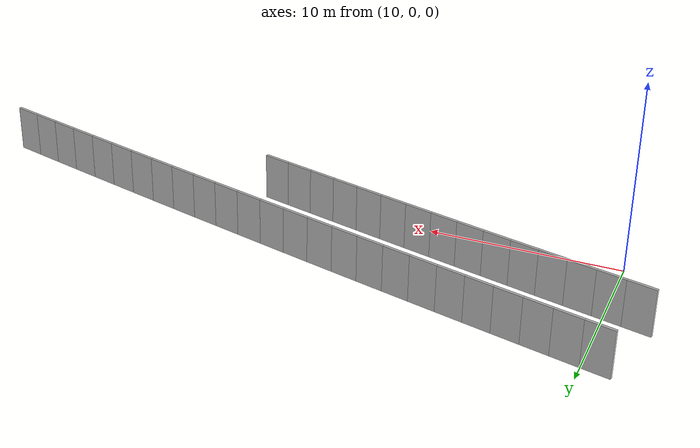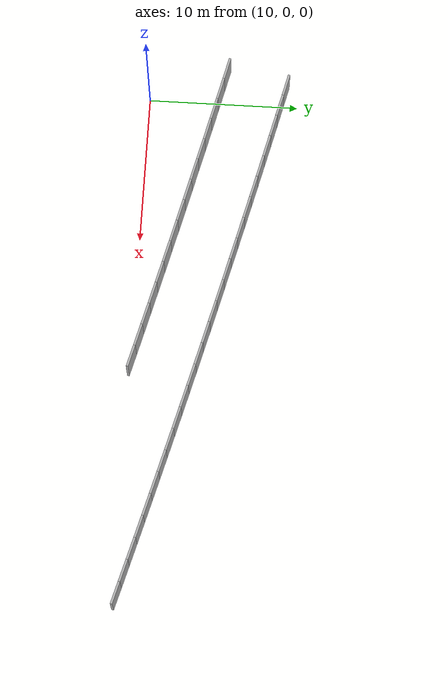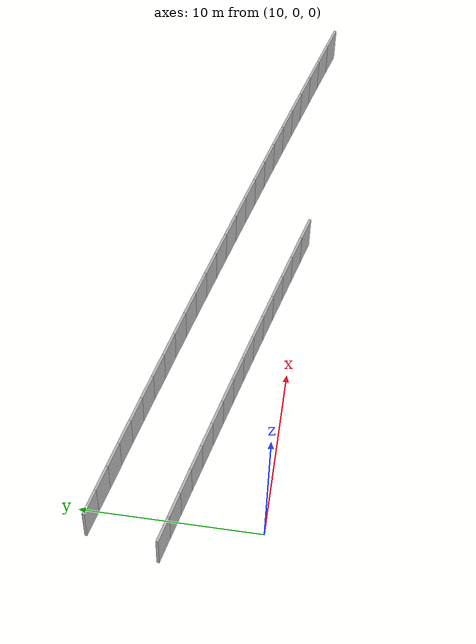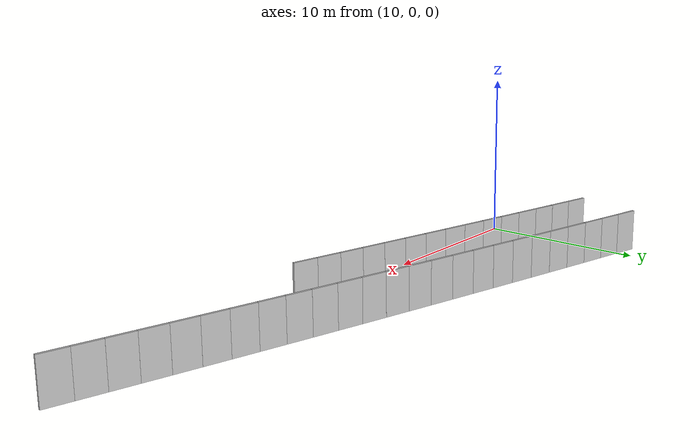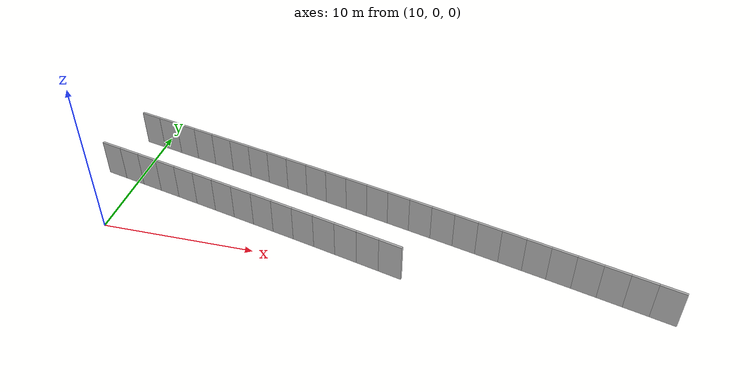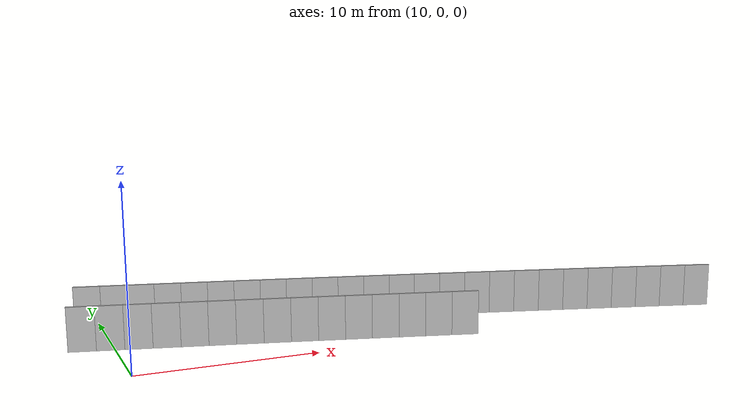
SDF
<?xml version="1.0" ?>
<sdf version="1.6">
  <model name="sps_3146">
    <pose frame="">0 0 0 0 -0 0</pose>
    <static>1</static>
    <self_collide>0</self_collide>
    <allow_auto_disable>0</allow_auto_disable>
    <link name="Wall10752">
      <kinematic>0</kinematic>
      <gravity>1</gravity>
      <self_collide>0</self_collide>
      <collision name="collision">
        <geometry>
          <box>
            <size>1.49661 0.15 2.5</size>
          </box>
        </geometry>
        <pose frame="">0 0 0 0 -0 0</pose>
      </collision>
      <visual name="visual">
        <geometry>
          <box>
            <size>1.49661 0.15 2.5</size>
          </box>
        </geometry>
        <pose frame="">0 0 0 0 -0 0</pose>
        <cast_shadows>1</cast_shadows>
        <transparency>0.0</transparency>
      </visual>
      <pose frame="">28.6499 0.0580892 1.25 0 -0 2.88601</pose>
    </link>
    <link name="Wall10753">
      <kinematic>0</kinematic>
      <gravity>1</gravity>
      <self_collide>0</self_collide>
      <collision name="collision">
        <geometry>
          <box>
            <size>1.49649 0.15 2.5</size>
          </box>
        </geometry>
        <pose frame="">0 0 0 0 -0 0</pose>
      </collision>
      <visual name="visual">
        <geometry>
          <box>
            <size>1.49649 0.15 2.5</size>
          </box>
        </geometry>
        <pose frame="">0 0 0 0 -0 0</pose>
        <cast_shadows>1</cast_shadows>
        <transparency>0.0</transparency>
      </visual>
      <pose frame="">27.2017 0.435378 1.25 0 -0 2.88746</pose>
    </link>
    <link name="Wall10754">
      <kinematic>0</kinematic>
      <gravity>1</gravity>
      <self_collide>0</self_collide>
      <collision name="collision">
        <geometry>
          <box>
            <size>1.49641 0.15 2.5</size>
          </box>
        </geometry>
        <pose frame="">0 0 0 0 -0 0</pose>
      </collision>
      <visual name="visual">
        <geometry>
          <box>
            <size>1.49641 0.15 2.5</size>
          </box>
        </geometry>
        <pose frame="">0 0 0 0 -0 0</pose>
        <cast_shadows>1</cast_shadows>
        <transparency>0.0</transparency>
      </visual>
      <pose frame="">25.753 0.810378 1.25 0 -0 2.88914</pose>
    </link>
    <link name="Wall10755">
      <kinematic>0</kinematic>
      <gravity>1</gravity>
      <self_collide>0</self_collide>
      <collision name="collision">
        <geometry>
          <box>
            <size>1.49647 0.15 2.5</size>
          </box>
        </geometry>
        <pose frame="">0 0 0 0 -0 0</pose>
      </collision>
      <visual name="visual">
        <geometry>
          <box>
            <size>1.49647 0.15 2.5</size>
          </box>
        </geometry>
        <pose frame="">0 0 0 0 -0 0</pose>
        <cast_shadows>1</cast_shadows>
        <transparency>0.0</transparency>
      </visual>
      <pose frame="">24.3037 1.18309 1.25 0 -0 2.89062</pose>
    </link>
    <link name="Wall10756">
      <kinematic>0</kinematic>
      <gravity>1</gravity>
      <self_collide>0</self_collide>
      <collision name="collision">
        <geometry>
          <box>
            <size>1.49669 0.15 2.5</size>
          </box>
        </geometry>
        <pose frame="">0 0 0 0 -0 0</pose>
      </collision>
      <visual name="visual">
        <geometry>
          <box>
            <size>1.49669 0.15 2.5</size>
          </box>
        </geometry>
        <pose frame="">0 0 0 0 -0 0</pose>
        <cast_shadows>1</cast_shadows>
        <transparency>0.0</transparency>
      </visual>
      <pose frame="">22.8537 1.55351 1.25 0 -0 2.89234</pose>
    </link>
    <link name="Wall10757">
      <kinematic>0</kinematic>
      <gravity>1</gravity>
      <self_collide>0</self_collide>
      <collision name="collision">
        <geometry>
          <box>
            <size>1.49651 0.15 2.5</size>
          </box>
        </geometry>
        <pose frame="">0 0 0 0 -0 0</pose>
      </collision>
      <visual name="visual">
        <geometry>
          <box>
            <size>1.49651 0.15 2.5</size>
          </box>
        </geometry>
        <pose frame="">0 0 0 0 -0 0</pose>
        <cast_shadows>1</cast_shadows>
        <transparency>0.0</transparency>
      </visual>
      <pose frame="">21.403 1.92161 1.25 0 -0 2.89382</pose>
    </link>
    <link name="Wall10758">
      <kinematic>0</kinematic>
      <gravity>1</gravity>
      <self_collide>0</self_collide>
      <collision name="collision">
        <geometry>
          <box>
            <size>1.49626 0.15 2.5</size>
          </box>
        </geometry>
        <pose frame="">0 0 0 0 -0 0</pose>
      </collision>
      <visual name="visual">
        <geometry>
          <box>
            <size>1.49626 0.15 2.5</size>
          </box>
        </geometry>
        <pose frame="">0 0 0 0 -0 0</pose>
        <cast_shadows>1</cast_shadows>
        <transparency>0.0</transparency>
      </visual>
      <pose frame="">19.952 2.2874 1.25 0 -0 2.89547</pose>
    </link>
    <link name="Wall10759">
      <kinematic>0</kinematic>
      <gravity>1</gravity>
      <self_collide>0</self_collide>
      <collision name="collision">
        <geometry>
          <box>
            <size>1.49657 0.15 2.5</size>
          </box>
        </geometry>
        <pose frame="">0 0 0 0 -0 0</pose>
      </collision>
      <visual name="visual">
        <geometry>
          <box>
            <size>1.49657 0.15 2.5</size>
          </box>
        </geometry>
        <pose frame="">0 0 0 0 -0 0</pose>
        <cast_shadows>1</cast_shadows>
        <transparency>0.0</transparency>
      </visual>
      <pose frame="">18.5004 2.65089 1.25 0 -0 2.89699</pose>
    </link>
    <link name="Wall10760">
      <kinematic>0</kinematic>
      <gravity>1</gravity>
      <self_collide>0</self_collide>
      <collision name="collision">
        <geometry>
          <box>
            <size>1.49652 0.15 2.5</size>
          </box>
        </geometry>
        <pose frame="">0 0 0 0 -0 0</pose>
      </collision>
      <visual name="visual">
        <geometry>
          <box>
            <size>1.49652 0.15 2.5</size>
          </box>
        </geometry>
        <pose frame="">0 0 0 0 -0 0</pose>
        <cast_shadows>1</cast_shadows>
        <transparency>0.0</transparency>
      </visual>
      <pose frame="">17.0481 3.0121 1.25 0 -0 2.89866</pose>
    </link>
    <link name="Wall10761">
      <kinematic>0</kinematic>
      <gravity>1</gravity>
      <self_collide>0</self_collide>
      <collision name="collision">
        <geometry>
          <box>
            <size>1.49641 0.15 2.5</size>
          </box>
        </geometry>
        <pose frame="">0 0 0 0 -0 0</pose>
      </collision>
      <visual name="visual">
        <geometry>
          <box>
            <size>1.49641 0.15 2.5</size>
          </box>
        </geometry>
        <pose frame="">0 0 0 0 -0 0</pose>
        <cast_shadows>1</cast_shadows>
        <transparency>0.0</transparency>
      </visual>
      <pose frame="">15.5954 3.37099 1.25 0 -0 2.90016</pose>
    </link>
    <link name="Wall10762">
      <kinematic>0</kinematic>
      <gravity>1</gravity>
      <self_collide>0</self_collide>
      <collision name="collision">
        <geometry>
          <box>
            <size>1.49665 0.15 2.5</size>
          </box>
        </geometry>
        <pose frame="">0 0 0 0 -0 0</pose>
      </collision>
      <visual name="visual">
        <geometry>
          <box>
            <size>1.49665 0.15 2.5</size>
          </box>
        </geometry>
        <pose frame="">0 0 0 0 -0 0</pose>
        <cast_shadows>1</cast_shadows>
        <transparency>0.0</transparency>
      </visual>
      <pose frame="">14.142 3.72768 1.25 0 -0 2.90171</pose>
    </link>
    <link name="Wall10763">
      <kinematic>0</kinematic>
      <gravity>1</gravity>
      <self_collide>0</self_collide>
      <collision name="collision">
        <geometry>
          <box>
            <size>1.4965 0.15 2.5</size>
          </box>
        </geometry>
        <pose frame="">0 0 0 0 -0 0</pose>
      </collision>
      <visual name="visual">
        <geometry>
          <box>
            <size>1.4965 0.15 2.5</size>
          </box>
        </geometry>
        <pose frame="">0 0 0 0 -0 0</pose>
        <cast_shadows>1</cast_shadows>
        <transparency>0.0</transparency>
      </visual>
      <pose frame="">12.6879 4.08208 1.25 0 -0 2.90332</pose>
    </link>
    <link name="Wall10764">
      <kinematic>0</kinematic>
      <gravity>1</gravity>
      <self_collide>0</self_collide>
      <collision name="collision">
        <geometry>
          <box>
            <size>1.49648 0.15 2.5</size>
          </box>
        </geometry>
        <pose frame="">0 0 0 0 -0 0</pose>
      </collision>
      <visual name="visual">
        <geometry>
          <box>
            <size>1.49648 0.15 2.5</size>
          </box>
        </geometry>
        <pose frame="">0 0 0 0 -0 0</pose>
        <cast_shadows>1</cast_shadows>
        <transparency>0.0</transparency>
      </visual>
      <pose frame="">11.2335 4.4341 1.25 0 -0 2.90495</pose>
    </link>
    <link name="Wall10765">
      <kinematic>0</kinematic>
      <gravity>1</gravity>
      <self_collide>0</self_collide>
      <collision name="collision">
        <geometry>
          <box>
            <size>1.49654 0.15 2.5</size>
          </box>
        </geometry>
        <pose frame="">0 0 0 0 -0 0</pose>
      </collision>
      <visual name="visual">
        <geometry>
          <box>
            <size>1.49654 0.15 2.5</size>
          </box>
        </geometry>
        <pose frame="">0 0 0 0 -0 0</pose>
        <cast_shadows>1</cast_shadows>
        <transparency>0.0</transparency>
      </visual>
      <pose frame="">9.77837 4.7838 1.25 0 -0 2.90652</pose>
    </link>
    <link name="Wall10766">
      <kinematic>0</kinematic>
      <gravity>1</gravity>
      <self_collide>0</self_collide>
      <collision name="collision">
        <geometry>
          <box>
            <size>1.49641 0.15 2.5</size>
          </box>
        </geometry>
        <pose frame="">0 0 0 0 -0 0</pose>
      </collision>
      <visual name="visual">
        <geometry>
          <box>
            <size>1.49641 0.15 2.5</size>
          </box>
        </geometry>
        <pose frame="">0 0 0 0 -0 0</pose>
        <cast_shadows>1</cast_shadows>
        <transparency>0.0</transparency>
      </visual>
      <pose frame="">8.32278 5.13118 1.25 0 -0 2.90813</pose>
    </link>
    <link name="Wall11339">
      <kinematic>0</kinematic>
      <gravity>1</gravity>
      <self_collide>0</self_collide>
      <collision name="collision">
        <geometry>
          <box>
            <size>1.50309 0.15 2.5</size>
          </box>
        </geometry>
        <pose frame="">0 0 0 0 -0 0</pose>
      </collision>
      <visual name="visual">
        <geometry>
          <box>
            <size>1.50309 0.15 2.5</size>
          </box>
        </geometry>
        <pose frame="">0 0 0 0 -0 0</pose>
        <cast_shadows>1</cast_shadows>
        <transparency>0.0</transparency>
      </visual>
      <pose frame="">44.208 0.147475 1.25 0 -0 2.87002</pose>
    </link>
    <link name="Wall11340">
      <kinematic>0</kinematic>
      <gravity>1</gravity>
      <self_collide>0</self_collide>
      <collision name="collision">
        <geometry>
          <box>
            <size>1.50298 0.15 2.5</size>
          </box>
        </geometry>
        <pose frame="">0 0 0 0 -0 0</pose>
      </collision>
      <visual name="visual">
        <geometry>
          <box>
            <size>1.50298 0.15 2.5</size>
          </box>
        </geometry>
        <pose frame="">0 0 0 0 -0 0</pose>
        <cast_shadows>1</cast_shadows>
        <transparency>0.0</transparency>
      </visual>
      <pose frame="">42.7598 0.549483 1.25 0 -0 2.87164</pose>
    </link>
    <link name="Wall11341">
      <kinematic>0</kinematic>
      <gravity>1</gravity>
      <self_collide>0</self_collide>
      <collision name="collision">
        <geometry>
          <box>
            <size>1.50315 0.15 2.5</size>
          </box>
        </geometry>
        <pose frame="">0 0 0 0 -0 0</pose>
      </collision>
      <visual name="visual">
        <geometry>
          <box>
            <size>1.50315 0.15 2.5</size>
          </box>
        </geometry>
        <pose frame="">0 0 0 0 -0 0</pose>
        <cast_shadows>1</cast_shadows>
        <transparency>0.0</transparency>
      </visual>
      <pose frame="">41.3108 0.94908 1.25 0 -0 2.87336</pose>
    </link>
    <link name="Wall11342">
      <kinematic>0</kinematic>
      <gravity>1</gravity>
      <self_collide>0</self_collide>
      <collision name="collision">
        <geometry>
          <box>
            <size>1.50311 0.15 2.5</size>
          </box>
        </geometry>
        <pose frame="">0 0 0 0 -0 0</pose>
      </collision>
      <visual name="visual">
        <geometry>
          <box>
            <size>1.50311 0.15 2.5</size>
          </box>
        </geometry>
        <pose frame="">0 0 0 0 -0 0</pose>
        <cast_shadows>1</cast_shadows>
        <transparency>0.0</transparency>
      </visual>
      <pose frame="">39.8611 1.34627 1.25 0 -0 2.875</pose>
    </link>
    <link name="Wall11343">
      <kinematic>0</kinematic>
      <gravity>1</gravity>
      <self_collide>0</self_collide>
      <collision name="collision">
        <geometry>
          <box>
            <size>1.50301 0.15 2.5</size>
          </box>
        </geometry>
        <pose frame="">0 0 0 0 -0 0</pose>
      </collision>
      <visual name="visual">
        <geometry>
          <box>
            <size>1.50301 0.15 2.5</size>
          </box>
        </geometry>
        <pose frame="">0 0 0 0 -0 0</pose>
        <cast_shadows>1</cast_shadows>
        <transparency>0.0</transparency>
      </visual>
      <pose frame="">38.4108 1.74129 1.25 0 -0 2.87632</pose>
    </link>
    <link name="Wall11344">
      <kinematic>0</kinematic>
      <gravity>1</gravity>
      <self_collide>0</self_collide>
      <collision name="collision">
        <geometry>
          <box>
            <size>1.50313 0.15 2.5</size>
          </box>
        </geometry>
        <pose frame="">0 0 0 0 -0 0</pose>
      </collision>
      <visual name="visual">
        <geometry>
          <box>
            <size>1.50313 0.15 2.5</size>
          </box>
        </geometry>
        <pose frame="">0 0 0 0 -0 0</pose>
        <cast_shadows>1</cast_shadows>
        <transparency>0.0</transparency>
      </visual>
      <pose frame="">36.96 2.1342 1.25 0 -0 2.8779</pose>
    </link>
    <link name="Wall11345">
      <kinematic>0</kinematic>
      <gravity>1</gravity>
      <self_collide>0</self_collide>
      <collision name="collision">
        <geometry>
          <box>
            <size>1.50334 0.15 2.5</size>
          </box>
        </geometry>
        <pose frame="">0 0 0 0 -0 0</pose>
      </collision>
      <visual name="visual">
        <geometry>
          <box>
            <size>1.50334 0.15 2.5</size>
          </box>
        </geometry>
        <pose frame="">0 0 0 0 -0 0</pose>
        <cast_shadows>1</cast_shadows>
        <transparency>0.0</transparency>
      </visual>
      <pose frame="">35.5084 2.52479 1.25 0 -0 2.87958</pose>
    </link>
    <link name="Wall11346">
      <kinematic>0</kinematic>
      <gravity>1</gravity>
      <self_collide>0</self_collide>
      <collision name="collision">
        <geometry>
          <box>
            <size>1.50307 0.15 2.5</size>
          </box>
        </geometry>
        <pose frame="">0 0 0 0 -0 0</pose>
      </collision>
      <visual name="visual">
        <geometry>
          <box>
            <size>1.50307 0.15 2.5</size>
          </box>
        </geometry>
        <pose frame="">0 0 0 0 -0 0</pose>
        <cast_shadows>1</cast_shadows>
        <transparency>0.0</transparency>
      </visual>
      <pose frame="">34.0562 2.91301 1.25 0 -0 2.88117</pose>
    </link>
    <link name="Wall11347">
      <kinematic>0</kinematic>
      <gravity>1</gravity>
      <self_collide>0</self_collide>
      <collision name="collision">
        <geometry>
          <box>
            <size>1.5028 0.15 2.5</size>
          </box>
        </geometry>
        <pose frame="">0 0 0 0 -0 0</pose>
      </collision>
      <visual name="visual">
        <geometry>
          <box>
            <size>1.5028 0.15 2.5</size>
          </box>
        </geometry>
        <pose frame="">0 0 0 0 -0 0</pose>
        <cast_shadows>1</cast_shadows>
        <transparency>0.0</transparency>
      </visual>
      <pose frame="">32.6037 3.29881 1.25 0 -0 2.8828</pose>
    </link>
    <link name="Wall11348">
      <kinematic>0</kinematic>
      <gravity>1</gravity>
      <self_collide>0</self_collide>
      <collision name="collision">
        <geometry>
          <box>
            <size>1.50307 0.15 2.5</size>
          </box>
        </geometry>
        <pose frame="">0 0 0 0 -0 0</pose>
      </collision>
      <visual name="visual">
        <geometry>
          <box>
            <size>1.50307 0.15 2.5</size>
          </box>
        </geometry>
        <pose frame="">0 0 0 0 -0 0</pose>
        <cast_shadows>1</cast_shadows>
        <transparency>0.0</transparency>
      </visual>
      <pose frame="">31.1505 3.6823 1.25 0 -0 2.88436</pose>
    </link>
    <link name="Wall11349">
      <kinematic>0</kinematic>
      <gravity>1</gravity>
      <self_collide>0</self_collide>
      <collision name="collision">
        <geometry>
          <box>
            <size>1.5031 0.15 2.5</size>
          </box>
        </geometry>
        <pose frame="">0 0 0 0 -0 0</pose>
      </collision>
      <visual name="visual">
        <geometry>
          <box>
            <size>1.5031 0.15 2.5</size>
          </box>
        </geometry>
        <pose frame="">0 0 0 0 -0 0</pose>
        <cast_shadows>1</cast_shadows>
        <transparency>0.0</transparency>
      </visual>
      <pose frame="">29.6966 4.06358 1.25 0 -0 2.88588</pose>
    </link>
    <link name="Wall11350">
      <kinematic>0</kinematic>
      <gravity>1</gravity>
      <self_collide>0</self_collide>
      <collision name="collision">
        <geometry>
          <box>
            <size>1.50303 0.15 2.5</size>
          </box>
        </geometry>
        <pose frame="">0 0 0 0 -0 0</pose>
      </collision>
      <visual name="visual">
        <geometry>
          <box>
            <size>1.50303 0.15 2.5</size>
          </box>
        </geometry>
        <pose frame="">0 0 0 0 -0 0</pose>
        <cast_shadows>1</cast_shadows>
        <transparency>0.0</transparency>
      </visual>
      <pose frame="">28.2421 4.44258 1.25 0 -0 2.8875</pose>
    </link>
    <link name="Wall11351">
      <kinematic>0</kinematic>
      <gravity>1</gravity>
      <self_collide>0</self_collide>
      <collision name="collision">
        <geometry>
          <box>
            <size>1.50313 0.15 2.5</size>
          </box>
        </geometry>
        <pose frame="">0 0 0 0 -0 0</pose>
      </collision>
      <visual name="visual">
        <geometry>
          <box>
            <size>1.50313 0.15 2.5</size>
          </box>
        </geometry>
        <pose frame="">0 0 0 0 -0 0</pose>
        <cast_shadows>1</cast_shadows>
        <transparency>0.0</transparency>
      </visual>
      <pose frame="">26.7869 4.81929 1.25 0 -0 2.88903</pose>
    </link>
    <link name="Wall11352">
      <kinematic>0</kinematic>
      <gravity>1</gravity>
      <self_collide>0</self_collide>
      <collision name="collision">
        <geometry>
          <box>
            <size>1.50305 0.15 2.5</size>
          </box>
        </geometry>
        <pose frame="">0 0 0 0 -0 0</pose>
      </collision>
      <visual name="visual">
        <geometry>
          <box>
            <size>1.50305 0.15 2.5</size>
          </box>
        </geometry>
        <pose frame="">0 0 0 0 -0 0</pose>
        <cast_shadows>1</cast_shadows>
        <transparency>0.0</transparency>
      </visual>
      <pose frame="">25.3312 5.19368 1.25 0 -0 2.89069</pose>
    </link>
    <link name="Wall11353">
      <kinematic>0</kinematic>
      <gravity>1</gravity>
      <self_collide>0</self_collide>
      <collision name="collision">
        <geometry>
          <box>
            <size>1.50307 0.15 2.5</size>
          </box>
        </geometry>
        <pose frame="">0 0 0 0 -0 0</pose>
      </collision>
      <visual name="visual">
        <geometry>
          <box>
            <size>1.50307 0.15 2.5</size>
          </box>
        </geometry>
        <pose frame="">0 0 0 0 -0 0</pose>
        <cast_shadows>1</cast_shadows>
        <transparency>0.0</transparency>
      </visual>
      <pose frame="">23.8749 5.56569 1.25 0 -0 2.89229</pose>
    </link>
    <link name="Wall11354">
      <kinematic>0</kinematic>
      <gravity>1</gravity>
      <self_collide>0</self_collide>
      <collision name="collision">
        <geometry>
          <box>
            <size>1.50305 0.15 2.5</size>
          </box>
        </geometry>
        <pose frame="">0 0 0 0 -0 0</pose>
      </collision>
      <visual name="visual">
        <geometry>
          <box>
            <size>1.50305 0.15 2.5</size>
          </box>
        </geometry>
        <pose frame="">0 0 0 0 -0 0</pose>
        <cast_shadows>1</cast_shadows>
        <transparency>0.0</transparency>
      </visual>
      <pose frame="">22.4181 5.93541 1.25 0 -0 2.89384</pose>
    </link>
    <link name="Wall11355">
      <kinematic>0</kinematic>
      <gravity>1</gravity>
      <self_collide>0</self_collide>
      <collision name="collision">
        <geometry>
          <box>
            <size>1.50298 0.15 2.5</size>
          </box>
        </geometry>
        <pose frame="">0 0 0 0 -0 0</pose>
      </collision>
      <visual name="visual">
        <geometry>
          <box>
            <size>1.50298 0.15 2.5</size>
          </box>
        </geometry>
        <pose frame="">0 0 0 0 -0 0</pose>
        <cast_shadows>1</cast_shadows>
        <transparency>0.0</transparency>
      </visual>
      <pose frame="">20.9607 6.3029 1.25 0 -0 2.89533</pose>
    </link>
    <link name="Wall11356">
      <kinematic>0</kinematic>
      <gravity>1</gravity>
      <self_collide>0</self_collide>
      <collision name="collision">
        <geometry>
          <box>
            <size>1.50312 0.15 2.5</size>
          </box>
        </geometry>
        <pose frame="">0 0 0 0 -0 0</pose>
      </collision>
      <visual name="visual">
        <geometry>
          <box>
            <size>1.50312 0.15 2.5</size>
          </box>
        </geometry>
        <pose frame="">0 0 0 0 -0 0</pose>
        <cast_shadows>1</cast_shadows>
        <transparency>0.0</transparency>
      </visual>
      <pose frame="">19.5026 6.66811 1.25 0 -0 2.89699</pose>
    </link>
    <link name="Wall11357">
      <kinematic>0</kinematic>
      <gravity>1</gravity>
      <self_collide>0</self_collide>
      <collision name="collision">
        <geometry>
          <box>
            <size>1.50308 0.15 2.5</size>
          </box>
        </geometry>
        <pose frame="">0 0 0 0 -0 0</pose>
      </collision>
      <visual name="visual">
        <geometry>
          <box>
            <size>1.50308 0.15 2.5</size>
          </box>
        </geometry>
        <pose frame="">0 0 0 0 -0 0</pose>
        <cast_shadows>1</cast_shadows>
        <transparency>0.0</transparency>
      </visual>
      <pose frame="">18.044 7.03081 1.25 0 -0 2.89878</pose>
    </link>
    <link name="Wall11358">
      <kinematic>0</kinematic>
      <gravity>1</gravity>
      <self_collide>0</self_collide>
      <collision name="collision">
        <geometry>
          <box>
            <size>1.50301 0.15 2.5</size>
          </box>
        </geometry>
        <pose frame="">0 0 0 0 -0 0</pose>
      </collision>
      <visual name="visual">
        <geometry>
          <box>
            <size>1.50301 0.15 2.5</size>
          </box>
        </geometry>
        <pose frame="">0 0 0 0 -0 0</pose>
        <cast_shadows>1</cast_shadows>
        <transparency>0.0</transparency>
      </visual>
      <pose frame="">16.5848 7.39119 1.25 0 -0 2.90015</pose>
    </link>
    <link name="Wall11359">
      <kinematic>0</kinematic>
      <gravity>1</gravity>
      <self_collide>0</self_collide>
      <collision name="collision">
        <geometry>
          <box>
            <size>1.50321 0.15 2.5</size>
          </box>
        </geometry>
        <pose frame="">0 0 0 0 -0 0</pose>
      </collision>
      <visual name="visual">
        <geometry>
          <box>
            <size>1.50321 0.15 2.5</size>
          </box>
        </geometry>
        <pose frame="">0 0 0 0 -0 0</pose>
        <cast_shadows>1</cast_shadows>
        <transparency>0.0</transparency>
      </visual>
      <pose frame="">15.125 7.74937 1.25 0 -0 2.90181</pose>
    </link>
    <link name="Wall11360">
      <kinematic>0</kinematic>
      <gravity>1</gravity>
      <self_collide>0</self_collide>
      <collision name="collision">
        <geometry>
          <box>
            <size>1.50311 0.15 2.5</size>
          </box>
        </geometry>
        <pose frame="">0 0 0 0 -0 0</pose>
      </collision>
      <visual name="visual">
        <geometry>
          <box>
            <size>1.50311 0.15 2.5</size>
          </box>
        </geometry>
        <pose frame="">0 0 0 0 -0 0</pose>
        <cast_shadows>1</cast_shadows>
        <transparency>0.0</transparency>
      </visual>
      <pose frame="">13.6645 8.10527 1.25 0 -0 2.9033</pose>
    </link>
    <link name="Wall11361">
      <kinematic>0</kinematic>
      <gravity>1</gravity>
      <self_collide>0</self_collide>
      <collision name="collision">
        <geometry>
          <box>
            <size>1.50308 0.15 2.5</size>
          </box>
        </geometry>
        <pose frame="">0 0 0 0 -0 0</pose>
      </collision>
      <visual name="visual">
        <geometry>
          <box>
            <size>1.50308 0.15 2.5</size>
          </box>
        </geometry>
        <pose frame="">0 0 0 0 -0 0</pose>
        <cast_shadows>1</cast_shadows>
        <transparency>0.0</transparency>
      </visual>
      <pose frame="">12.2036 8.45888 1.25 0 -0 2.90493</pose>
    </link>
    <link name="Wall11362">
      <kinematic>0</kinematic>
      <gravity>1</gravity>
      <self_collide>0</self_collide>
      <collision name="collision">
        <geometry>
          <box>
            <size>1.50294 0.15 2.5</size>
          </box>
        </geometry>
        <pose frame="">0 0 0 0 -0 0</pose>
      </collision>
      <visual name="visual">
        <geometry>
          <box>
            <size>1.50294 0.15 2.5</size>
          </box>
        </geometry>
        <pose frame="">0 0 0 0 -0 0</pose>
        <cast_shadows>1</cast_shadows>
        <transparency>0.0</transparency>
      </visual>
      <pose frame="">10.7422 8.8101 1.25 0 -0 2.90653</pose>
    </link>
    <link name="Wall11363">
      <kinematic>0</kinematic>
      <gravity>1</gravity>
      <self_collide>0</self_collide>
      <collision name="collision">
        <geometry>
          <box>
            <size>1.50295 0.15 2.5</size>
          </box>
        </geometry>
        <pose frame="">0 0 0 0 -0 0</pose>
      </collision>
      <visual name="visual">
        <geometry>
          <box>
            <size>1.50295 0.15 2.5</size>
          </box>
        </geometry>
        <pose frame="">0 0 0 0 -0 0</pose>
        <cast_shadows>1</cast_shadows>
        <transparency>0.0</transparency>
      </visual>
      <pose frame="">9.28036 9.15901 1.25 0 -0 2.90808</pose>
    </link>
  </model>
</sdf>
